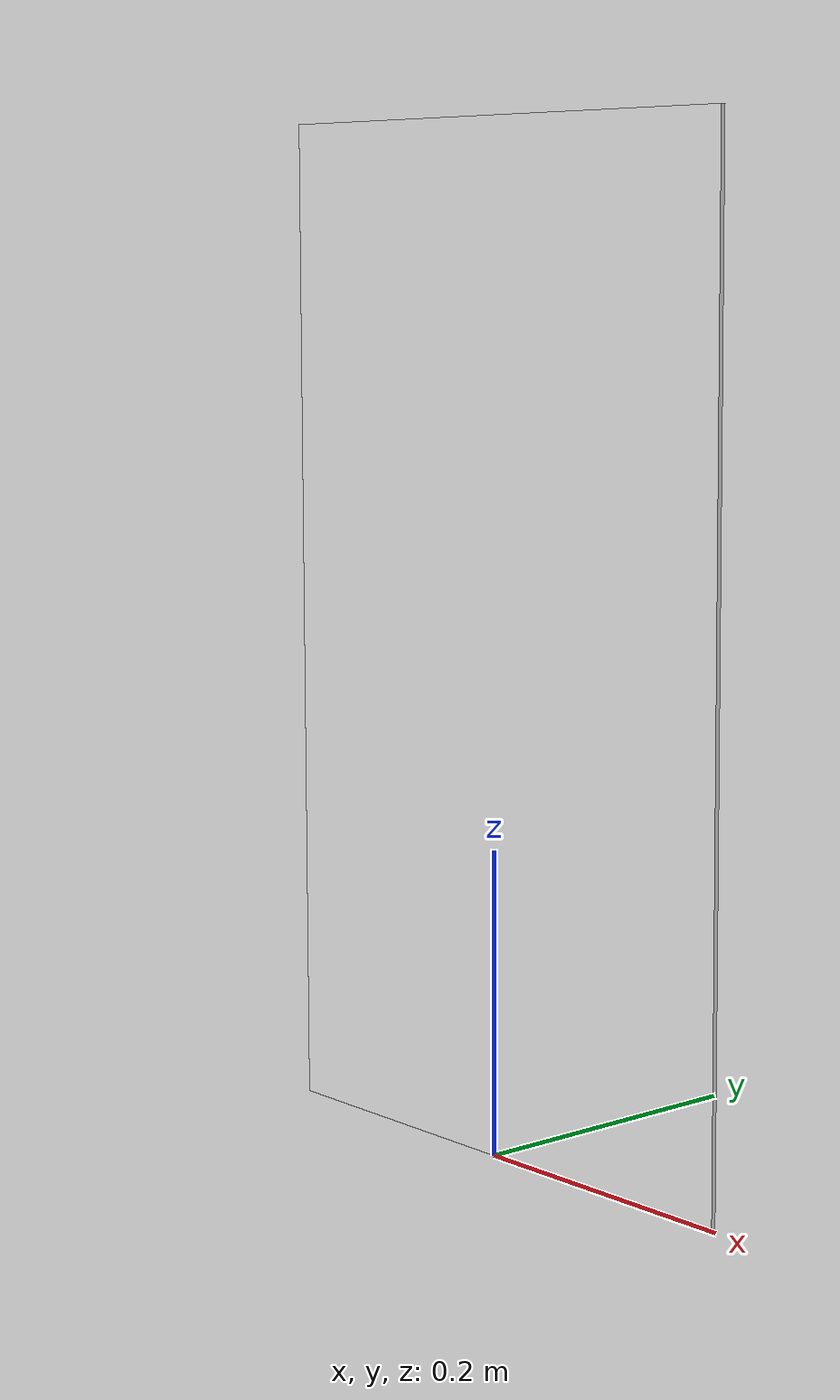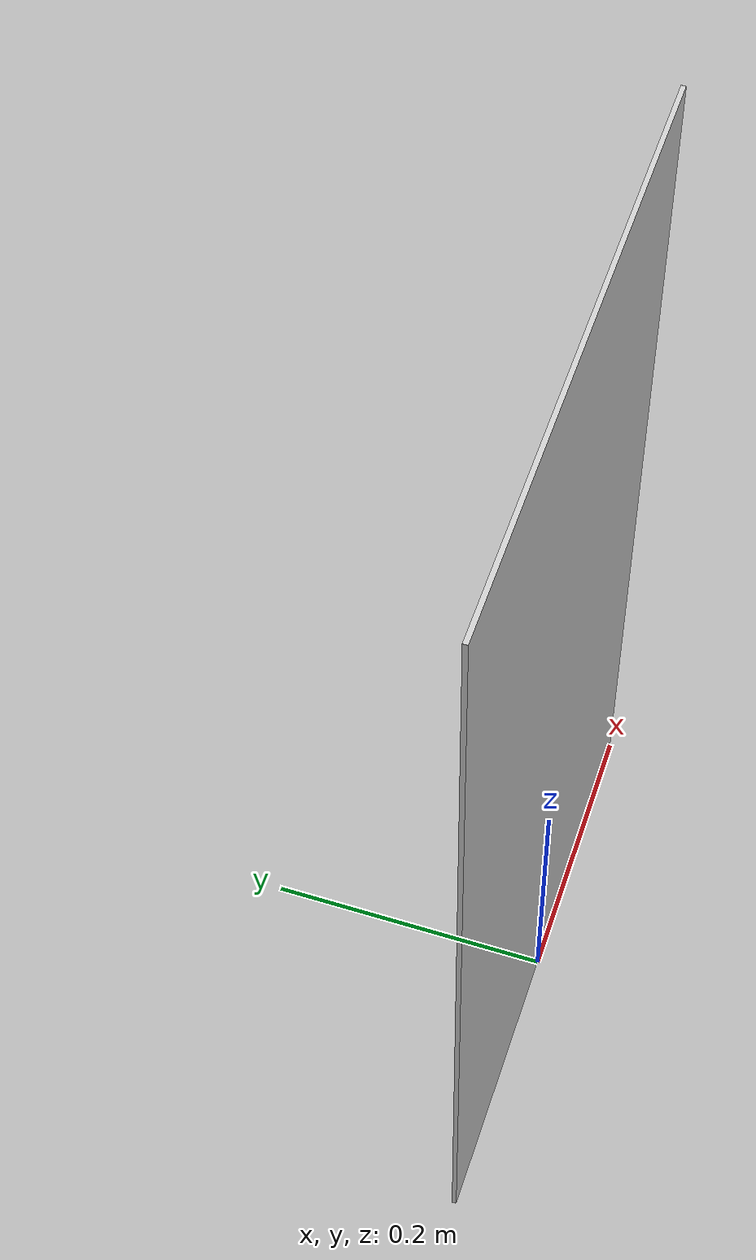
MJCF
<!-- desk.xml -->

<mujoco model="desk">
  <compiler meshdir="assets" />
  <visual>
    <global azimuth="90" elevation="-90"/>
  </visual>
  <default>
    <default class="desk">
      <material specular="0.3" shininess="0.8"/>
      <default class="visual">
        <geom type="mesh" contype="0" conaffinity="0"/>
      </default>
      <default class="collision">
        <geom type="mesh" solref="0.02 1" solimp="0.95 0.99 0.001"/>
      </default>
    </default>
  </default>
  <asset>
    <material name="desk_material" rgba="0.8 0.8 0.8 1"/>
    <mesh name="desk_mesh" file="desk.obj" scale="1 1 1"/>
  </asset>
  <worldbody>
    <body name="desk_body" childclass="desk" pos="0 0 0">
      <inertial pos="0 0 0" mass="30" diaginertia="0.01 0.01 0.01"/>
      <geom mesh="desk_mesh" material="desk_material" class="visual"/>
      <!--geom mesh="desk_mesh" material="desk_material" class="collision"/-->
    </body>
  </worldbody>
</mujoco>
